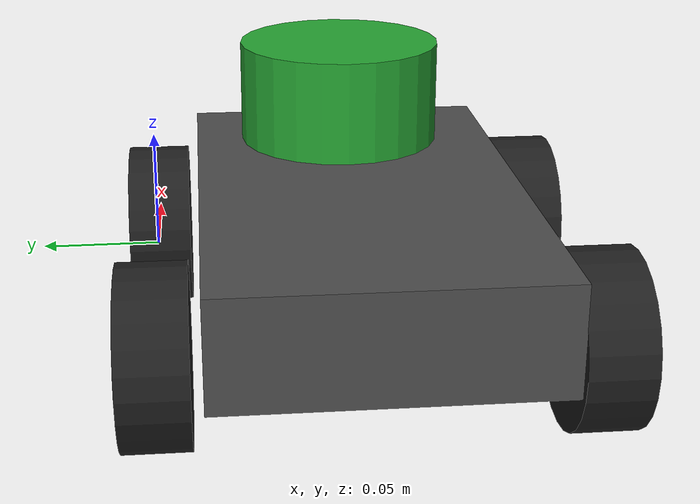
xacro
<?xml version="1.0" ?>
<robot name="4whl_lidar" xmlns:xacro="http://ros.org/wiki/xacro">

  <xacro:include filename="$(find dharmendra_model)/gazebo/4whl_lidar/4whl_lidar.gazebo"/>

  <link name= "0base_footprint" />

  <joint name="base_joint" type="fixed">
    <parent link="0base_footprint"/>
    <child link="1chessy_link"/>
    <origin xyz="0.04061 -0.0922  -0.0155" rpy="0 0 0"/>
  </joint>

  <joint name="back_left_joint" type="revolute">
    <parent link="1chessy_link"/>
    <child link="2left_back_link"/>
    <origin xyz="0.06435 -0.09418 -0.015" rpy="1.5708 0     0"/>
    <axis xyz="0 0 1"/>
    <limit lower="-1.79769e+308" upper="1.79769e+308" effort="-1.0" velocity="-1.0"/>
  </joint>

  <link name="2left_back_link">
    <inertial>
      <mass value="1"/>
      <origin xyz="0 0 0" rpy="0 0 0"/>
      <inertia ixx="0.145833" ixy="0" ixz="0" iyy="0.145833" iyz="0" izz="0.125"/>
    </inertial>
    <collision>
      <origin xyz="0 0 0" rpy="0 0 0"/>
      <geometry>
        <cylinder radius="0.04" length="0.03"/>
      </geometry>
    </collision>
    <visual>
      <origin xyz="0 0 0" rpy="0 0 0"/>
      <geometry>
        <cylinder radius="0.04" length="0.03"/>
      </geometry>
    </visual>
  </link>

  <joint name="back_right_joint" type="revolute">
    <parent link="1chessy_link"/>
    <child link="3right_back_link"/>
    <origin xyz="0.06435  0.09414 -0.015" rpy="1.5708 0     0"/>
    <axis xyz="0 0 1"/>
    <limit lower="-1.79769e+308" upper="1.79769e+308" effort="-1.0" velocity="-1.0"/>
  </joint>

  <link name="3right_back_link">
    <inertial>
      <mass value="1"/>
      <origin xyz="0 0 0" rpy="0 0 0"/>
      <inertia ixx="0.145833" ixy="0" ixz="0" iyy="0.145833" iyz="0" izz="0.125"/>
    </inertial>
    <collision>
      <origin xyz="0 0 0" rpy="0 0 0"/>
      <geometry>
        <cylinder radius="0.04" length="0.03"/>
      </geometry>
    </collision>
    <visual>
      <origin xyz="0 0 0" rpy="0 0 0"/>
      <geometry>
        <cylinder radius="0.04" length="0.03"/>
      </geometry>
    </visual>
  </link>

  <joint name="front_right_joint" type="revolute">
    <parent link="1chessy_link"/>
    <child link="5right_front_link"/>
    <origin xyz="-0.09187  0.09414 -0.015" rpy="1.5708 0     0"/>
    <axis xyz="0 0 1"/>
    <limit lower="-1.79769e+308" upper="1.79769e+308" effort="-1.0" velocity="-1.0"/>
  </joint>

   <link name="5right_front_link">
    <inertial>
      <mass value="1"/>
      <origin xyz="0 0 0" rpy="0 0 0"/>
      <inertia ixx="0.145833" ixy="0" ixz="0" iyy="0.145833" iyz="0" izz="0.125"/>
    </inertial>
    <collision>
      <origin xyz="0 0 0" rpy="0 0 0"/>
      <geometry>
        <cylinder radius="0.04" length="0.03"/>
      </geometry>
    </collision>
    <visual>
      <origin xyz="0 0 0" rpy="0 0 0"/>
      <geometry>
        <cylinder radius="0.04" length="0.03"/>
      </geometry>
    </visual>
  </link>

  <joint name="front_left_joint" type="revolute">
    <parent link="1chessy_link"/>
    <child link="4left_front_link"/>
    <origin xyz="-0.09187 -0.09418 -0.015" rpy="1.5708 0     0"/>
    <axis xyz="0 0 1"/>
    <limit lower="-1.79769e+308" upper="1.79769e+308" effort="-1.0" velocity="-1.0"/>
  </joint>

  <link name="4left_front_link">
    <inertial>
      <mass value="1"/>
      <origin xyz="0 0 0" rpy="0 0 0"/>
      <inertia ixx="0.145833" ixy="0" ixz="0" iyy="0.145833" iyz="0" izz="0.125"/>
    </inertial>
    <collision>
      <origin xyz="0 0 0" rpy="0 0 0"/>
      <geometry>
        <cylinder radius="0.04" length="0.03"/>
      </geometry>
    </collision>
    <visual>
      <origin xyz="0 0 0" rpy="0 0 0"/>
      <geometry>
        <cylinder radius="0.04" length="0.03"/>
      </geometry>
    </visual>
  </link>

  <joint name="lidar_joint" type="fixed">
    <parent link="1chessy_link"/>
    <child link="ldar_link"/>
    <origin xyz="0.06659 0.00097 0.055" rpy="0 0 0"/>
    <axis xyz="0 0 0"/>
    <limit lower="0" upper="0" effort="0" velocity="0"/>
  </joint>

  <link name="ldar_link">
    <inertial>
      <mass value="1"/>
      <origin xyz="0 0 0" rpy="0 0 0"/>
      <inertia ixx="0.145833" ixy="0" ixz="0" iyy="0.145833" iyz="0" izz="0.125"/>
    </inertial>
    <collision>
      <origin xyz="0 0 0" rpy="0 0 0"/>
      <geometry>
        <cylinder radius="0.05" length="0.05"/>
      </geometry>
    </collision>
    <visual>
      <origin xyz="0 0 0" rpy="0 0 0"/>
      <geometry>
        <cylinder radius="0.05" length="0.05"/>
      </geometry>
    </visual>
  </link>

  <link name="1chessy_link">
    <inertial>
      <mass value="13"/>
      <origin xyz="0 0 0" rpy="0 0 0"/>
      <inertia ixx="0.166667" ixy="0" ixz="0" iyy="0.166667" iyz="0" izz="0.166667"/>
    </inertial>
    <collision>
      <origin xyz="-0.01153 -0.0009   0.005" rpy="0 0 0"/>
      <geometry>
        <box size="0.25 0.15 0.05"/>
      </geometry>
    </collision>
    <visual>
      <origin xyz="-0.01153 -0.0009   0.005" rpy="0 0 0"/>
      <geometry>
        <box size="0.25 0.15 0.05"/>
      </geometry>
    </visual>
  </link>

</robot>
